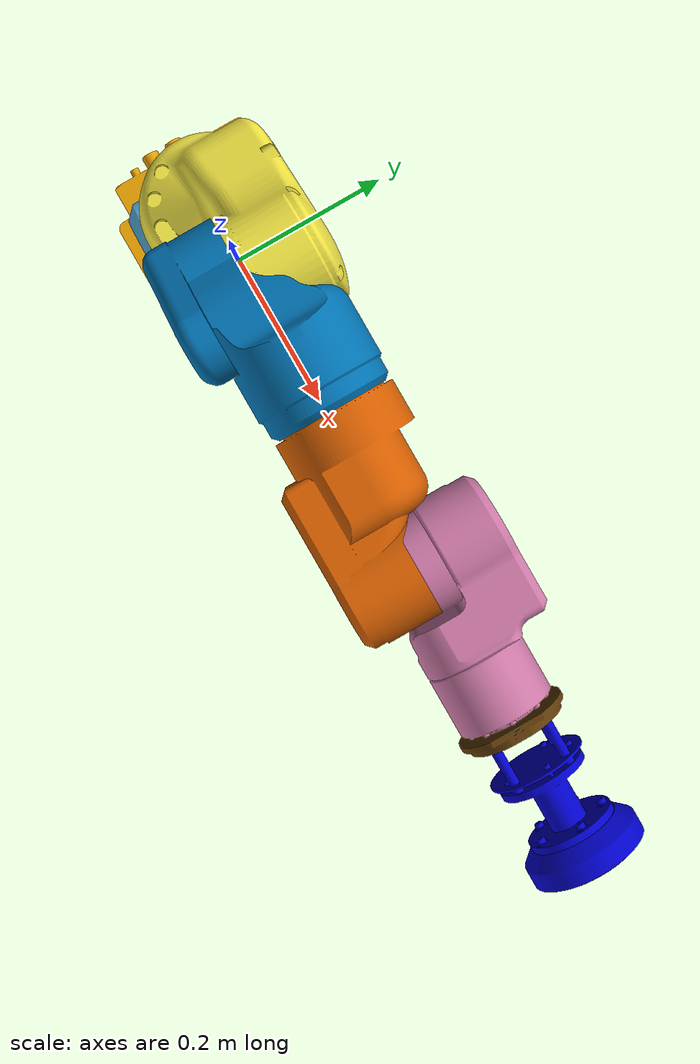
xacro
<?xml version="1.0"?>
<robot name="sia5" xmlns:xacro="http://ros.org/wiki/xacro">
  <!-- File Include -->
  <xacro:include filename="$(find motoman_description)/urdf/tool/jamming.urdf.xacro"/>
  <xacro:include filename="$(find motoman_description)/urdf/tool/jamming.gazebo.xacro"/>
  <xacro:include filename="$(find motoman_description)/robots/sia5/sia5.urdf.xacro"/>

  <!-- Link -->
  <xacro:tool_link_cylinder_v0 name="gripper_link" mass="1.0"
                               radius="0.0965" height="0.61445"
                               ox="0" oy="0" oz="0"
                               oroll="0" opitch="0" oyaw="0"/>

  <link name="balloon"/>
  <!-- 								   ixx="0.001" ixy="0" ixz="0" -->

  <!-- Joint  -->
  <joint name="joint_gripper" type="fixed">
    <origin rpy="-0.1745 0 0" xyz="0.0001 0 0"/>
    <parent link="tool0"/>
    <child link="gripper_link"/>
  </joint>

  <joint name="joint_balloon" type="fixed">
    <origin rpy="0.1745 0 0" xyz="0.108 0 0"/>
    <parent link="gripper_link"/>
    <child link="balloon"/>
  </joint>

  <!-- Gazebo -->
  <xacro:gazebo_tool_link_v0 name="gripper_link" color="Blue"/>
  <xacro:gazebo_tool_link_v0 name="balloon" color="Red"/>

</robot>

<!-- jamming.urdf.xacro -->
<robot xmlns:xacro="http://ros.org/wiki/xacro">
  <xacro:macro name="tool_link_v0" params="name mass
                                           ixx ixy ixz
                                           iyy iyz izz">
    <link name="${name}">
      <visual>
        <material name="blue"/>
        <geometry>
          <mesh filename="package://motoman_description/meshes/tool/visual/COLLADA/${name}.stl"/>
        </geometry>
      </visual>
      <collision>
        <geometry>
          <mesh filename="package://motoman_description/meshes/tool/collision/STL/${name}.stl"/>
        </geometry>
      </collision>
      <inertial>
        <mass value="${mass}"/>
        <inertia ixx="${ixx}" ixy="${ixy}" ixz="${ixz}" iyy="${iyy}" iyz="${iyz}" izz="${izz}" />
      </inertial>
    </link>
  </xacro:macro>

  <xacro:macro name="tool_link_no_collision_v0" params="name mass
                                                        ixx ixy ixz
                                                        iyy iyz izz">
    <link name="${name}">
      <visual>
		<material name="red"/>
        <geometry>
          <mesh filename="package://motoman_description/meshes/tool/visual/COLLADA/${name}.stl"/>
        </geometry>
      </visual>
      <inertial>
        <mass value="${mass}"/>
        <inertia ixx="${ixx}" ixy="${ixy}" ixz="${ixz}" iyy="${iyy}" iyz="${iyz}" izz="${izz}" />
      </inertial>
    </link>
  </xacro:macro>

  <xacro:macro name="tool_link_cylinder_v0" params="name mass radius height
                                                    ox oy oz oroll opitch oyaw">
    <link name="${name}">
      <visual>
        <material name="blue"/>
        <geometry>
          <mesh filename="package://motoman_description/meshes/tool/visual/COLLADA/${name}.stl"/>
        </geometry>
      </visual>
      <collision>
        <geometry>
          <mesh filename="package://motoman_description/meshes/tool/collision/STL/${name}.stl"/>
        </geometry>
      </collision>
      <inertial>
        <origin xyz="${ox} ${oy} ${oz}" rpy="${oroll} ${opitch} ${oyaw}"/>
        <mass value="${mass}"/>
        <inertia ixx="${mass*((radius*radius)/4+(height*height)/12)}" ixy="0" ixz="0"
                 iyy="${mass*((radius*radius)/4+(height*height)/12)}" iyz="0"
                 izz="${(mass*radius*radius)/2}" />
      </inertial>
    </link>
  </xacro:macro>

</robot>

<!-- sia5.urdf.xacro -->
<robot name="sia5" xmlns:xacro="http://ros.org/wiki/xacro">
  <!-- File Include -->
  <xacro:include filename="$(find motoman_description)/robots/sia5/sia5_basic.urdf.xacro" />

  <xacro:add_world>
    <origin xyz="0 0 0" rpy="0 0 0"/>
  </xacro:add_world>

</robot>

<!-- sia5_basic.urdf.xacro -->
<robot name="sia5" xmlns:xacro="http://ros.org/wiki/xacro">
  <!-- File Include -->
  <xacro:include filename="$(find motoman_description)/urdf/common.xacro" />
  <xacro:include filename="$(find motoman_description)/urdf/materials.xacro"/>
  <xacro:include filename="$(find motoman_description)/urdf/sia5/body.urdf.xacro" />
  <xacro:include filename="$(find motoman_description)/urdf/sia5/body.transmission.xacro"/>
  <xacro:include filename="$(find motoman_description)/urdf/sia5/body.gazebo.xacro"/>

  <!-- Mass -->
  <property name="sum_mass" value="30.0" />
  <!-- about mass rate -->
  <property name="table_mass" value="40.0" />
  <property name="base_rate" value="8.5" />
  <property name="s_rate" value="7.7" />
  <property name="l_rate" value="7.0" />
  <property name="e_rate" value="1.2" />
  <property name="u_rate" value="1.0" />
  <property name="r_rate" value="0.9" />
  <property name="b_rate" value="0.8" />
  <property name="t_rate" value="0.5" />
  <!-- Hard ware limits -->
  <!-- Range limits -->
  <xacro:property name="s_axis_upper_limit" value="${179.99999*M_PI/180.0}"/>
  <xacro:property name="s_axis_lower_limit" value="-${s_axis_upper_limit}"/>
  <xacro:property name="l_axis_upper_limit" value="${110.0*M_PI/180.0}"/>
  <xacro:property name="l_axis_lower_limit" value="-${l_axis_upper_limit}"/>
  <xacro:property name="e_axis_upper_limit" value="${170.0*M_PI/180.0}"/>
  <xacro:property name="e_axis_lower_limit" value="-${e_axis_upper_limit}"/>
  <xacro:property name="u_axis_upper_limit" value="${115.0*M_PI/180.0}"/>
  <xacro:property name="u_axis_lower_limit" value="${-90.0*M_PI/180.0}"/>
  <xacro:property name="r_axis_upper_limit" value="${179.99999*M_PI/180.0}"/>
  <xacro:property name="r_axis_lower_limit" value="-${r_axis_upper_limit}"/>
  <xacro:property name="b_axis_upper_limit" value="${110.0*M_PI/180.0}"/>
  <xacro:property name="b_axis_lower_limit" value="-${b_axis_upper_limit}"/>
  <xacro:property name="t_axis_upper_limit" value="${179.99999*M_PI/180.0}"/>
  <xacro:property name="t_axis_lower_limit" value="-${t_axis_upper_limit}"/>
  <!-- Velocity limits -->
  <xacro:property name="s_axis_velocity_limit" value="${200.0*M_PI/180.0}"/>
  <xacro:property name="l_axis_velocity_limit" value="${200.0*M_PI/180.0}"/>
  <xacro:property name="e_axis_velocity_limit" value="${200.0*M_PI/180.0}"/>
  <xacro:property name="u_axis_velocity_limit" value="${200.0*M_PI/180.0}"/>
  <xacro:property name="r_axis_velocity_limit" value="${200.0*M_PI/180.0}"/>
  <xacro:property name="b_axis_velocity_limit" value="${230.0*M_PI/180.0}"/>
  <xacro:property name="t_axis_velocity_limit" value="${350.0*M_PI/180.0}"/>

  <!-- Add macro -->
  <xacro:macro name="add_world" params="*origin">
    <link name="world"/>
    <joint name="world" type="fixed">
      <insert_block name="origin"/>
      <parent link="world"/>
      <child link="base_link"/>
    </joint>
  </xacro:macro>

  <!-- link -->
  <xacro:link_box_v0 name="base_link" mass="${base_rate/sum_rate*sum_mass}"
                     width="0.1665" depth="0.1976" height="0.1465"
                     ox="-0.025918" oy="-0.000376" oz="0.076105" oroll="0" opitch="0" oyaw="0"/>
  <xacro:link_cylinder_plus_box_v0 name="link_s"
                                   ox="0" oy="0" oz="0" oroll="0" opitch="0" oyaw="0"
                                   mass_cyl="${s_rate/sum_rate*sum_mass*0.2}"
                                   radius_cyl="0.066" height_cyl="0.031"
                                   mass_box="${s_rate/sum_rate*sum_mass*0.8}"
                                   width_box="0.0851" depth_box="0.1" height_box="0.1823"/>
  <xacro:link_cylinder_plus_box_v0 name="link_l"
                                   ox="0" oy="-0.006" oz="0.15" oroll="${M_PI}" opitch="0" oyaw="0"
                                   mass_cyl="${l_rate/sum_rate*sum_mass*0.4}"
                                   radius_cyl="0.066" height_cyl="0.073"
                                   mass_box="${l_rate/sum_rate*sum_mass*0.6}"
                                   width_box="0.073" depth_box="0.1089" height_box="0.149"/>
  <xacro:link_cylinder_plus_box_v0 name="link_e"
                                   ox="0" oy="0" oz="0" oroll="0" opitch="0" oyaw="${-M_PI/2}"
                                   mass_cyl="${e_rate/sum_rate*sum_mass*0.56}"
                                   radius_cyl="0.0685" height_cyl="0.0661"
                                   mass_box="${e_rate/sum_rate*sum_mass*0.44}"
                                   width_box="0.1234" depth_box="0.063" height_box="0.1176"/>
  <xacro:link_cylinder_plus_box_v0 name="link_u"
                                   ox="0.008" oy="-0.06" oz="-0.131" oroll="${-M_PI}" opitch="${M_PI/2}" oyaw="0"
                                   mass_cyl="${u_rate/sum_rate*sum_mass*0.48}"
                                   radius_cyl="0.055" height_cyl="0.0698"
                                   mass_box="${u_rate/sum_rate*sum_mass*0.52}"
                                   width_box="0.13174" depth_box="0.068" height_box="0.104"/>
  <xacro:link_cylinder_plus_box_v0 name="link_r"
                                     ox="0" oy="0" oz="0" oroll="0" opitch="0" oyaw="${-M_PI/2}"
                                     mass_cyl="${r_rate/sum_rate*sum_mass*0.25}"
                                     radius_cyl="0.0525" height_cyl="0.038"
                                     mass_box="${r_rate/sum_rate*sum_mass*0.75}"
                                     width_box="0.0645" depth_box="0.084" height_box="0.1425"/>
  <xacro:link_cylinder_plus_box_v0 name="link_b"
                                     ox="0" oy="0.0045" oz="0.1365" oroll="${M_PI/2}" opitch="${-M_PI/2}" oyaw="0"
                                     mass_cyl="${b_rate/sum_rate*sum_mass*0.55}"
                                     radius_cyl="0.04" height_cyl="0.0948"
                                     mass_box="${b_rate/sum_rate*sum_mass*0.45}"
                                     width_box="0.0676" depth_box="0.076" height_box="0.0627"/>
  <xacro:link_v1 name="link_t" mass="${t_rate/sum_rate*sum_mass}"
                   ixx="0.003" ixy="0" ixz="0"
                   iyy="0.003" iyz="0"
                   izz="0.001"/>
  <link name="tool0"/>

  <!-- joint -->
  <xacro:joint_v1 joint_name="joint_s"
                  parent_name="base_link" child_name="link_s"
                  ox="0" oy="0" oz="0.1765"
                  roll="0" pitch="0" yaw="0"
                  ax="0" ay="0" az="1"
                  el="30.0"
                  ll="${s_axis_lower_limit}" ul="${s_axis_upper_limit}"
                  vl="${s_axis_velocity_limit}"
                  skp="1" skv="1"
                  sll="${s_axis_lower_limit}" sul="${s_axis_upper_limit}"/>
  <xacro:joint_v1 joint_name="joint_l"
                  parent_name="link_s" child_name="link_l"
                  ox="0" oy="0.006" oz="0.136"
                  roll="0" pitch="0" yaw="0"
                  ax="0" ay="1" az="0"
                  el="30.0"
                  ll="${l_axis_lower_limit}" ul="${l_axis_upper_limit}"
                  vl="${l_axis_velocity_limit}"
                  skp="1" skv="1"
                  sll="${l_axis_lower_limit}" sul="${l_axis_upper_limit}"/>
  <xacro:joint_v1 joint_name="joint_e"
                  parent_name="link_l" child_name="link_e"
                  ox="0" oy="-0.006" oz="0.15"
                  roll="0" pitch="0" yaw="0"
                  ax="0" ay="0" az="1"
                  el="30.0"
                  ll="${e_axis_lower_limit}" ul="${e_axis_upper_limit}"
                  vl="${e_axis_velocity_limit}"
                  skp="1" skv="1"
                  sll="${e_axis_lower_limit}" sul="${e_axis_upper_limit}"/>
  <xacro:joint_v1 joint_name="joint_u"
                  parent_name="link_e" child_name="link_u"
                  ox="0.085" oy="-0.00826931" oz="0.12275299"
                  roll="${M_PI/2.0}" pitch="0" yaw="0"
                  ax="0" ay="0" az="1"
                  el="30.0"
                  ll="${u_axis_lower_limit}" ul="${u_axis_upper_limit}"
                  vl="${u_axis_velocity_limit}"
                  skp="1" skv="1"
                  sll="${u_axis_lower_limit}" sul="${u_axis_upper_limit}"/>
  <xacro:joint_v1 joint_name="joint_r"
                  parent_name="link_u" child_name="link_r"
                  ox="0.131" oy="0.06" oz="-0.008"
                  roll="0" pitch="${M_PI/2}" yaw="0"
                  ax="0" ay="0" az="-1"
                  el="14.7"
                  ll="${r_axis_lower_limit}" ul="${r_axis_upper_limit}"
                  vl="${r_axis_velocity_limit}"
                  skp="1" skv="1"
                  sll="${r_axis_lower_limit}" sul="${r_axis_upper_limit}"/>
  <xacro:joint_v1 joint_name="joint_b"
                  parent_name="link_r" child_name="link_b"
                  ox="-0.0045" oy="0" oz="0.139"
                  roll="0" pitch="${-M_PI/2}" yaw="0"
                  ax="0" ay="0" az="1"
                  el="14.7"
                  ll="${b_axis_lower_limit}" ul="${b_axis_upper_limit}"
                  vl="${b_axis_velocity_limit}"
                  skp="1" skv="1"
                  sll="${b_axis_lower_limit}" sul="${b_axis_upper_limit}"/>
  <xacro:joint_v1 joint_name="joint_t"
                  parent_name="link_b" child_name="link_t"
                  ox="0.1365" oy="0" oz="-0.0045"
                  roll="${-M_PI/2}" pitch="0" yaw="0"
                  ax="-1" ay="0" az="0"
                  el="7.35"
                  ll="${t_axis_lower_limit}" ul="${t_axis_upper_limit}"
                  vl="${t_axis_velocity_limit}"
                  skp="1" skv="1"
                  sll="${t_axis_lower_limit}" sul="${t_axis_upper_limit}"/>
  <joint name="joint_tool0" type="fixed">
    <origin rpy="0 0 0" xyz="0.0115 0 0"/>
    <parent link="link_t"/>
    <child link="tool0"/>
  </joint>

  <!-- transmission -->
  <xacro:simple_jp_trans_v0 name="transmission_s"
                            joint_name="joint_s" actuator_name="motor_s"
                            reduction="300"/>
  <xacro:simple_jp_trans_v0 name="transmission_l"
                            joint_name="joint_l" actuator_name="motor_l"
                            reduction="300"/>
  <xacro:simple_jp_trans_v0 name="transmission_e"
                            joint_name="joint_e" actuator_name="motor_e"
                            reduction="100"/>
  <xacro:simple_jp_trans_v0 name="transmission_u"
                            joint_name="joint_u" actuator_name="motor_u"
                            reduction="50"/>
  <xacro:simple_jp_trans_v0 name="transmission_r"
                            joint_name="joint_r" actuator_name="motor_r"
                            reduction="30"/>
  <xacro:simple_jp_trans_v0 name="transmission_b"
                            joint_name="joint_b" actuator_name="motor_b"
                            reduction="30"/>
  <xacro:simple_jp_trans_v0 name="transmission_t"
                            joint_name="joint_t" actuator_name="motor_t"
                            reduction="10"/>

  <!-- gazebo -->
  <gazebo>
    <plugin name="gazebo_ros_control" filename="libgazebo_ros_control.so">
      <robotSimType>gazebo_ros_control/DefaultRobotHWSim</robotSimType>
    </plugin>
  </gazebo>
  <xacro:gazebo_link_v1 name="base_link"/>
  <xacro:gazebo_link_v1 name="link_s"/>
  <xacro:gazebo_link_v1 name="link_l"/>
  <xacro:gazebo_link_v1 name="link_e"/>
  <xacro:gazebo_link_v1 name="link_u"/>
  <xacro:gazebo_link_v1 name="link_r"/>
  <xacro:gazebo_link_v1 name="link_b"/>
  <xacro:gazebo_link_v1 name="link_t"/>
</robot>

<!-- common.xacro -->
<robot xmlns:xacro="http://ros.org/wiki/xacro">
    <xacro:property name="M_PI" value="3.14159274" />
</robot>

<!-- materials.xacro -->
<robot xmlns:xacro="http://ros.org/wiki/xacro">

  <material name="black">
    <color rgba="0.0 0.0 0.0 1.0"/>
  </material>

  <material name="blue">
    <color rgba="0.0 0.0 0.8 1.0"/>
  </material>

  <material name="green">
    <color rgba="0.0 0.8 0.0 1.0"/>
  </material>

  <material name="grey">
    <color rgba="0.2 0.2 0.2 1.0"/>
  </material>

  <material name="orange">
    <color rgba="${255/255} ${108/255} ${10/255} 1.0"/>
  </material>

  <material name="brown">
    <color rgba="${222/255} ${207/255} ${195/255} 1.0"/>
  </material>

  <material name="red">
    <color rgba="0.8 0.0 0.0 1.0"/>
  </material>

  <material name="white">
    <color rgba="1.0 1.0 1.0 1.0"/>
  </material>

</robot>

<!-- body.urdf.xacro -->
<robot xmlns:xacro="http://ros.org/wiki/xacro">
  <property name="sum_rate" value="${base_rate + s_rate
                                      + l_rate + e_rate
                                      + u_rate + r_rate
                                      + b_rate + t_rate}" />

  <xacro:macro name="link_v1" params="name mass
                                      ixx ixy ixz
                                      iyy iyz izz">
    <link name="${name}">
      <visual>
        <geometry>
          <mesh filename="package://motoman_description/meshes/sia5/visual/COLLADA/${name}.dae"/>
        </geometry>
      </visual>
      <collision>
        <geometry>
          <mesh filename="package://motoman_description/meshes/sia5/collision/STL/${name}.stl"/>
        </geometry>
      </collision>
      <inertial>
        <mass value="${mass}"/>
        <inertia ixx="${ixx}" ixy="${ixy}" ixz="${ixz}" iyy="${iyy}" iyz="${iyz}" izz="${izz}" />
      </inertial>
    </link>
  </xacro:macro>

  <xacro:macro name="link_cylinder_v0" params="name mass radius height
                                               ox oy oz oroll opitch oyaw">
    <link name="${name}">
      <visual>
        <geometry>
          <mesh filename="package://motoman_description/meshes/sia5/visual/COLLADA/${name}.dae"/>
        </geometry>
      </visual>
      <collision>
        <geometry>
          <mesh filename="package://motoman_description/meshes/sia5/collision/STL/${name}.stl"/>
        </geometry>
      </collision>
      <inertial>
		<origin xyz="${ox} ${oy} ${oz}" rpy="${oroll} ${opitch} ${oyaw}"/>
        <mass value="${mass}"/>
        <inertia ixx="${mass*((radius*radius)/4+(height*height)/12)}" ixy="0" ixz="0"
				 iyy="${mass*((radius*radius)/4+(height*height)/12)}" iyz="0"
				 izz="${(mass*radius*radius)/2}" />
      </inertial>
    </link>
  </xacro:macro>

  <xacro:macro name="link_box_v0" params="name mass width depth  height
                                          ox oy oz oroll opitch oyaw">
    <link name="${name}">
      <visual>
        <geometry>
          <mesh filename="package://motoman_description/meshes/sia5/visual/COLLADA/${name}.dae"/>
        </geometry>
      </visual>
      <collision>
        <geometry>
          <mesh filename="package://motoman_description/meshes/sia5/collision/STL/${name}.stl"/>
        </geometry>
      </collision>
      <inertial>
		<origin xyz="${ox} ${oy} ${oz}" rpy="${oroll} ${opitch} ${oyaw}"/>
        <mass value="${mass}"/>
        <inertia ixx="${(mass*((width/2)*(width/2)+(height/2)*(height/2)))/3}" ixy="0" ixz="0"
				 iyy="${(mass*((depth/2)*(depth/2)+(height/2)*(height/2)))/3}" iyz="0"
				 izz="${(mass*((depth/2)*(depth/2)+(width/2)*(width/2)))/3}" />
      </inertial>
    </link>
  </xacro:macro>

  <xacro:macro name="link_box_v1" params="name mass width depth height
                                          ox oy oz oroll opitch oyaw">
    <link name="${name}">
      <visual>
        <geometry>
          <mesh filename="package://motoman_description/meshes/sia5/visual/COLLADA/${name}.dae"/>
        </geometry>
      </visual>
      <collision>
		<origin xyz="0 ${oy} -${oz}" rpy="${oroll} ${opitch} ${oyaw}"/>
        <geometry>
		  <box size="${depth} ${width} ${height}"/>
        </geometry>
      </collision>
      <inertial>
		<origin xyz="${ox} ${oy} ${oz}" rpy="${oroll} ${opitch} ${oyaw}"/>
        <mass value="${mass}"/>
        <inertia ixx="${(mass*((width/2)*(width/2)+(height/2)*(height/2)))/3}" ixy="0" ixz="0"
				 iyy="${(mass*((depth/2)*(depth/2)+(height/2)*(height/2)))/3}" iyz="0"
				 izz="${(mass*((depth/2)*(depth/2)+(width/2)*(width/2)))/3}" />
      </inertial>
    </link>
  </xacro:macro>

  <xacro:macro name="link_cylinder_plus_box_v0" params="name
                                                        ox oy oz oroll opitch oyaw
                                                        mass_cyl radius_cyl height_cyl
                                                        mass_box width_box depth_box height_box">
    <link name="${name}">
      <visual>
        <geometry>
          <mesh filename="package://motoman_description/meshes/sia5/visual/COLLADA/${name}.dae"/>
        </geometry>
      </visual>
      <collision>
        <geometry>
          <mesh filename="package://motoman_description/meshes/sia5/collision/STL/${name}.stl"/>
        </geometry>
      </collision>
      <inertial>
		<origin xyz="${ox} ${oy} ${oz}" rpy="${oroll} ${opitch} ${oyaw}"/>
        <mass value="${mass_cyl+mass_box}"/>
        <inertia ixx="${mass_cyl*((radius_cyl*radius_cyl)/4+(height_cyl*height_cyl)/3)+mass_box/3*(width_box*width_box+height_box*height_box)+mass_box*(radius_cyl*radius_cyl-radius_cyl*width_box+height_cyl*height_cyl+height_cyl*height_box)}" ixy="0" ixz="0"
                 iyy="${mass_cyl*((radius_cyl*radius_cyl)/4+(height_cyl*height_cyl)/12)+mass_box/3*(depth_box*depth_box+height_box*height_box)+mass_box*(radius_cyl*radius_cyl-radius_cyl*depth_box+height_cyl*height_cyl+height_cyl*height_box)}" iyz="0"
                 izz="${(mass_cyl*radius_cyl*radius_cyl)/2+mass_box/3*(depth_box*depth_box+width_box*width_box)+mass_box*(2*radius_cyl*radius_cyl-radius_cyl*depth_box-radius_cyl*width_box)}" />
      </inertial>
    </link>
  </xacro:macro>

  <xacro:macro name="joint_v1" params="joint_name
                                       parent_name child_name
                                       ox oy oz roll pitch yaw ax ay az
                                       el ll ul vl
                                       skp skv sll sul">
    <joint name="${joint_name}" type="revolute">
      <origin xyz="${ox} ${oy} ${oz}" rpy="${roll} ${pitch} ${yaw}"/>
      <parent link="${parent_name}"/>
      <child link="${child_name}"/>
      <axis xyz="${ax} ${ay} ${az}"/>
      <dynamics damping="0.7" friction="0.7"/>
      <limit effort="${el}" lower="${ll}" upper="${ul}" velocity="${vl}"/>
    </joint>
  </xacro:macro>
</robot>
